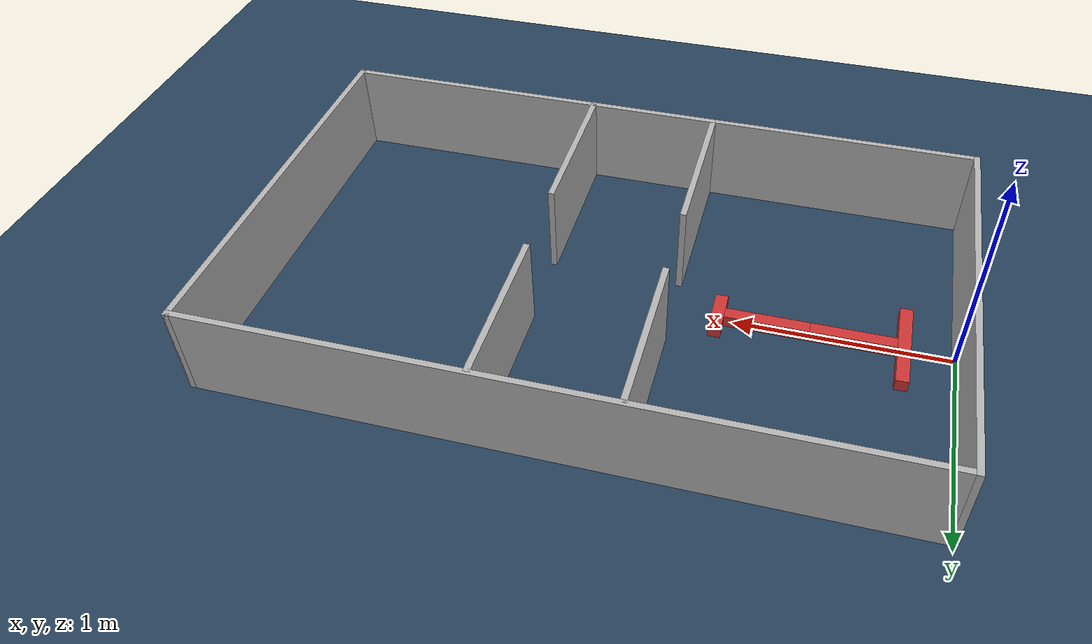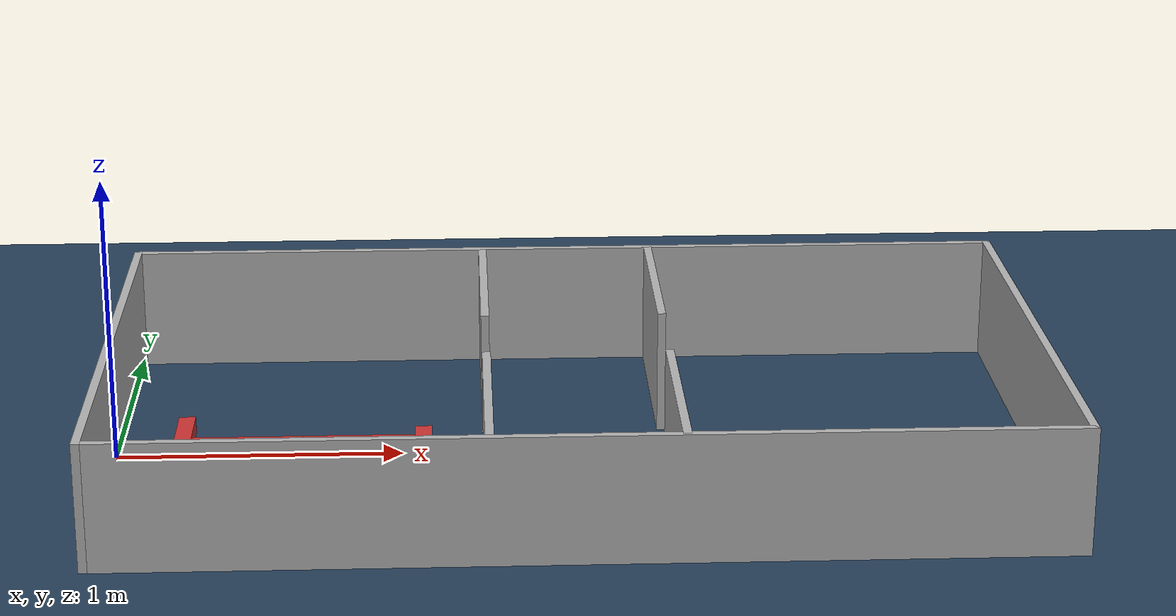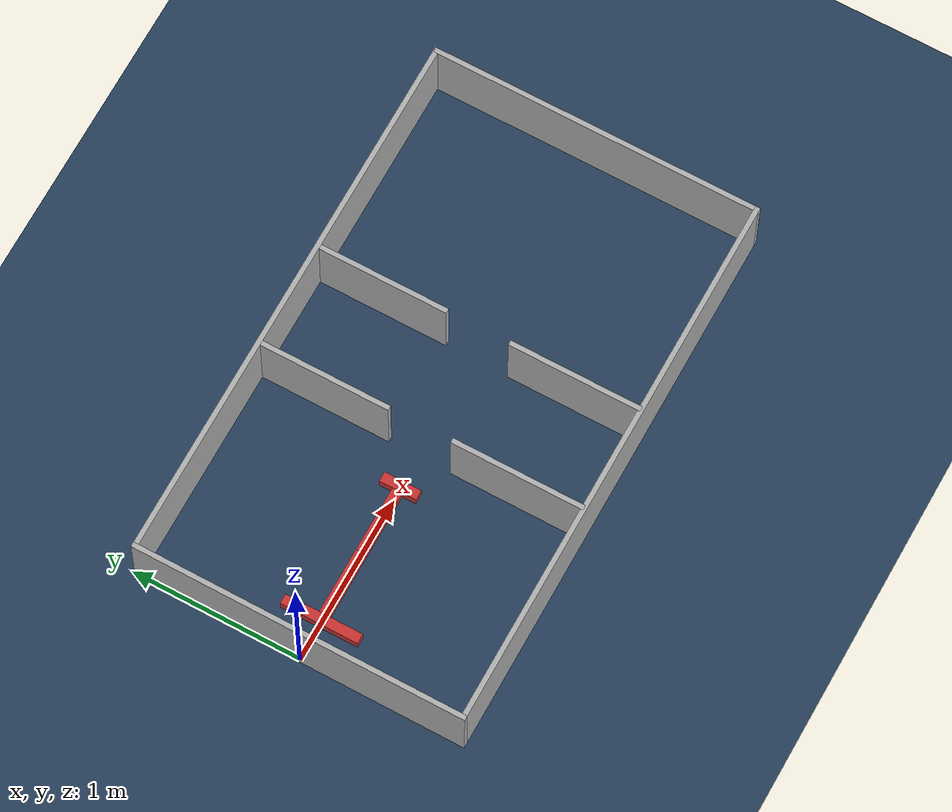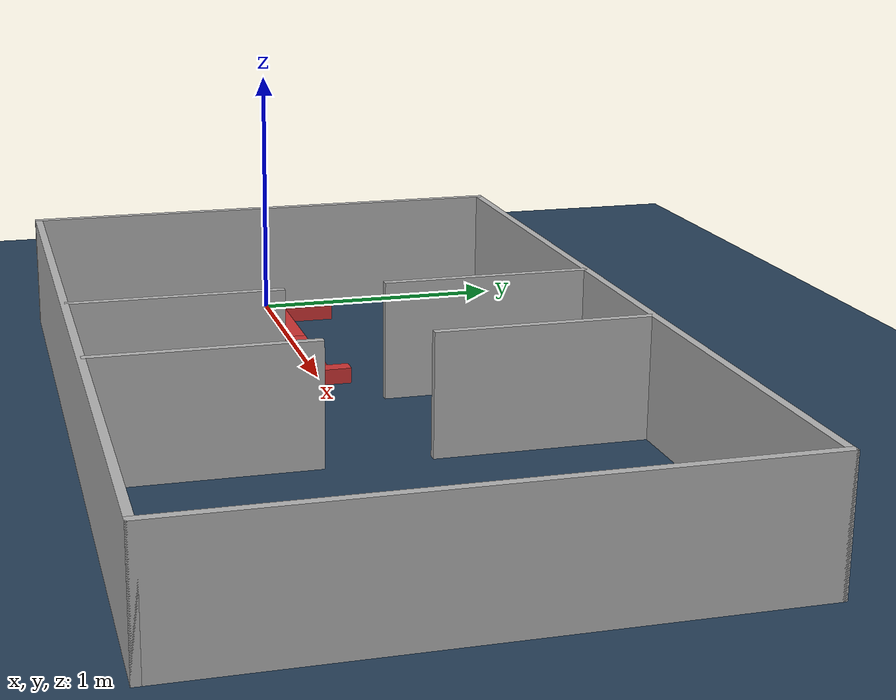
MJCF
<mujoco model="ant_puzzle_recreation">
  <option timestep="0.01" gravity="0 0 -9.81" density="1.2" viscosity="0.1"/>

  <visual>
    <headlight diffuse="0.6 0.6 0.6" ambient="0.3 0.3 0.3" specular="0 0 0"/>
    <rgba haze="0.15 0.25 0.35 1"/>
    <global/>
  </visual>

  <asset>
    <texture type="skybox" builtin="gradient" rgb1="0.3 0.5 0.7" rgb2="0 0 0" width="512" height="3072"/>
    <texture type="2d" name="groundplane" builtin="checker" mark="edge" rgb1="0.2 0.3 0.4" rgb2="0.1 0.2 0.3" markrgb="0.8 0.8 0.8" width="300" height="300"/>
    <material name="groundplane" texture="groundplane" texuniform="true" texrepeat="5 5"/>
  </asset>

  <worldbody>
    <!-- Floor -->
    <geom name="floor" size="10 10 0.05" type="plane" material="groundplane" contype="1" conaffinity="1"/>

    <!-- WALLS (The Puzzle) -->
    <body name="puzzle_walls" pos="0 0 0.220">
        <geom name="wall_left" type="box" pos="0 0 0" size="0.0145 0.975 0.220" rgba="0.7 0.7 0.7 1"/>
        <geom name="wall_back" type="box" pos="1.6185 -0.9605 0" size="1.604 0.0145 0.220" rgba="0.7 0.7 0.7 1"/>
        <geom name="wall_front" type="box" pos="1.6185 0.9605 0" size="1.604 0.0145 0.220" rgba="0.7 0.7 0.7 1"/>
        <geom name="wall_slit1_bottom" type="box" pos="1.2920 -0.5725 0" size="0.0145 0.388 0.220" rgba="0.7 0.7 0.7 1"/>
        <geom name="wall_slit1_top" type="box" pos="1.2920 0.5725 0" size="0.0145 0.388 0.220" rgba="0.7 0.7 0.7 1"/>
        <geom name="wall_slit2_bottom" type="box" pos="1.9160 -0.5725 0" size="0.0145 0.388 0.220" rgba="0.7 0.7 0.7 1"/>
        <geom name="wall_slit2_top" type="box" pos="1.9160 0.5725 0" size="0.0145 0.388 0.220" rgba="0.7 0.7 0.7 1"/>
        <geom name="wall_right" type="box" pos="3.208 0 0" size="0.0145 0.975 0.220" rgba="0.7 0.7 0.7 1"/>
    </body>

    <!-- THE T-SHAPED LOAD - Based on Table S1 "small ant (exp)" dimensions     -->
    <!-- All dimensions from cm -> m.                                           -->
    <!-- First link -->
    <body name="load" pos="0.65 0 0.0295">
      <joint name="slide_x" type="slide" axis="1 0 0" damping="0"/>
      <joint name="slide_y" type="slide" axis="0 1 0" damping="0"/>
      <joint name="hinge_z" type="hinge" axis="0 0 1" damping="0"/>

      <!-- long crossbar: length=0.58, width=0.09. size = [0.29, 0.045, 0.05] -->
      <geom name="long_bar" type="box" pos="-0.4205 0 0" size="0.0295 0.2295 0.0295" rgba="0.8 0.2 0.2 1" density="50"/>
      <geom name="link1_geom" type="box" size="0.1955 0.0295 0.0295" pos="-0.1955 0 0" rgba="0.8 0.2 0.2 1" density="50"/>

      <!-- Second link connected to the first -->
      <body name="link2" pos="0 0 0">
        <joint name="link2_hinge" type="hinge" axis="0 0 1" pos="0 0 0" limited="true" range="-100 100"/>
        <geom name="link2_geom" type="box" size="0.1955 0.0295 0.0295" pos="0.1955 0 0" rgba="0.8 0.2 0.2 1" density="50"/>
        <!-- short crossbar: length=0.29, width=0.09. size = [0.0045, 0.0145, 0.01] -->
        <!-- Positioned relative to the long_bar's center to form a T -->
        <geom name="short_bar" type="box" pos="0.4205 0 0" size="0.0295 0.1095 0.0295" rgba="0.8 0.2 0.2 1" density="50"/>
      </body>
    </body>

  </worldbody>
</mujoco>
